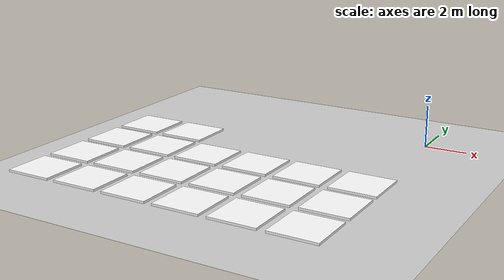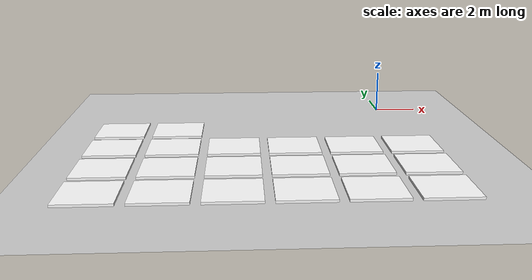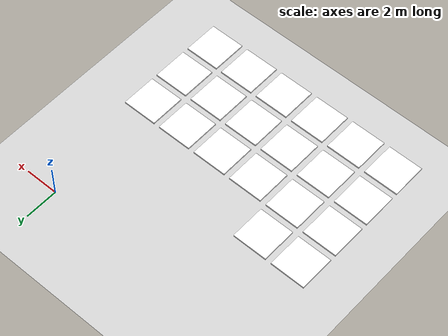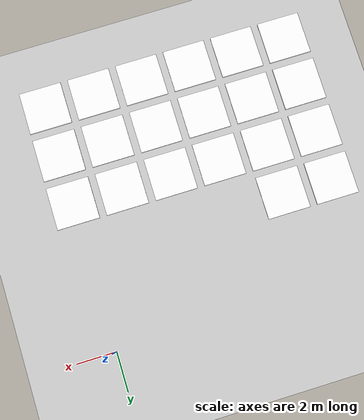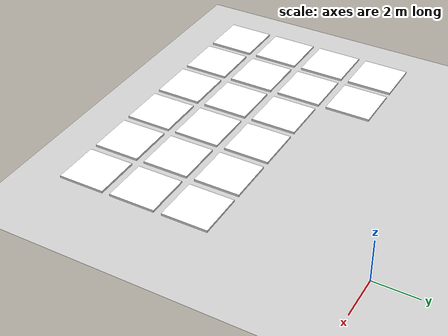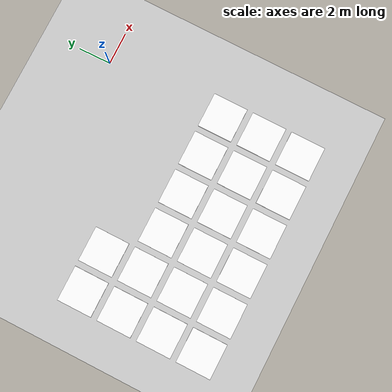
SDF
<sdf version="1.7">
 <world name="default">
  <model name="ground_plane">
   <static>1</static>
   <link name="link">
    <collision name="collision">
     <geometry><plane><normal>0 0 1</normal><size>100 100</size></plane></geometry>
     <surface>
      <contact><collide_bitmask>65535</collide_bitmask></contact>
      <friction><ode><mu>100</mu><mu2>50</mu2></ode></friction>
     </surface>
    </collision>
    <visual name="visual">
     <cast_shadows>0</cast_shadows>
     <geometry><plane><normal>0 0 1</normal><size>100 100</size></plane></geometry>
     <material>
      <script><uri>file://media/materials/scripts/gazebo.material</uri><name>Gazebo/Grey</name></script>
     </material>
    </visual>
   </link>
  </model>
  <model name="top_view_fuel_cluster_1_0">
   <link name="link">
    <inertial>
     <mass>0.489843</mass>
     <inertia>
      <ixx>0.0410659</ixx>
      <ixy>0</ixy>
      <ixz>0</ixz>
      <iyy>0.0410658</iyy>
      <iyz>0</iyz>
      <izz>0.0816405</izz>
     </inertia>
    </inertial>
    <visual name="visual">
     <geometry><box><size>2.14 2.14 0.099999</size></box></geometry>
     <material>
      <script>
       <uri>model://top_view_fuel_cluster/materials/scripts</uri>
       <uri>model://top_view_fuel_cluster/materials/textures</uri>
       <name>snf/Diffuse</name>
      </script>
      <shader type="pixel"><normal_map>__default__</normal_map></shader>
      <ambient>0.3 0.3 0.3 1</ambient>
      <diffuse>1 1 1 1</diffuse>
      <specular>0.01 0.01 0.01 1</specular>
      <emissive>0 0 0 1</emissive>
     </material>
    </visual>
    <collision name="collision">
     <geometry><box><size>2.14 2.14 0.100001</size></box></geometry>
     <surface>
      <friction>
       <ode><mu>1</mu><mu2>1</mu2><fdir1>0 0 0</fdir1><slip1>0</slip1><slip2>0</slip2></ode>
       <torsional>
        <coefficient>1</coefficient>
        <patch_radius>0</patch_radius>
        <surface_radius>0</surface_radius>
        <use_patch_radius>1</use_patch_radius>
        <ode><slip>0</slip></ode>
       </torsional>
      </friction>
      <bounce><restitution_coefficient>0</restitution_coefficient><threshold>1e+06</threshold></bounce>
      <contact>
       <collide_without_contact>0</collide_without_contact>
       <collide_without_contact_bitmask>1</collide_without_contact_bitmask>
       <collide_bitmask>1</collide_bitmask>
       <ode>
        <soft_cfm>0</soft_cfm>
        <soft_erp>0.2</soft_erp>
        <kp>1e+13</kp>
        <kd>1</kd>
        <max_vel>0.01</max_vel>
        <min_depth>0</min_depth>
       </ode>
       <bullet>
        <split_impulse>1</split_impulse>
        <split_impulse_penetration_threshold>-0.01</split_impulse_penetration_threshold>
        <soft_cfm>0</soft_cfm>
        <soft_erp>0.2</soft_erp>
        <kp>1e+13</kp>
        <kd>1</kd>
       </bullet>
      </contact>
     </surface>
    </collision>
   </link>
   <static>0</static>
   <pose>0 -12.5 0.5 0 0 0</pose>
  </model>
  <model name="top_view_fuel_cluster_1_1">
   <link name="link">
    <inertial>
     <mass>0.489843</mass>
     <inertia>
      <ixx>0.0410659</ixx>
      <ixy>0</ixy>
      <ixz>0</ixz>
      <iyy>0.0410658</iyy>
      <iyz>0</iyz>
      <izz>0.0816405</izz>
     </inertia>
    </inertial>
    <visual name="visual">
     <geometry><box><size>2.14 2.14 0.099999</size></box></geometry>
     <material>
      <script>
       <uri>model://top_view_fuel_cluster/materials/scripts</uri>
       <uri>model://top_view_fuel_cluster/materials/textures</uri>
       <name>snf/Diffuse</name>
      </script>
      <shader type="pixel"><normal_map>__default__</normal_map></shader>
      <ambient>0.3 0.3 0.3 1</ambient>
      <diffuse>1 1 1 1</diffuse>
      <specular>0.01 0.01 0.01 1</specular>
      <emissive>0 0 0 1</emissive>
     </material>
    </visual>
    <collision name="collision">
     <geometry><box><size>2.14 2.14 0.100001</size></box></geometry>
     <surface>
      <friction>
       <ode><mu>1</mu><mu2>1</mu2><fdir1>0 0 0</fdir1><slip1>0</slip1><slip2>0</slip2></ode>
       <torsional>
        <coefficient>1</coefficient>
        <patch_radius>0</patch_radius>
        <surface_radius>0</surface_radius>
        <use_patch_radius>1</use_patch_radius>
        <ode><slip>0</slip></ode>
       </torsional>
      </friction>
      <bounce><restitution_coefficient>0</restitution_coefficient><threshold>1e+06</threshold></bounce>
      <contact>
       <collide_without_contact>0</collide_without_contact>
       <collide_without_contact_bitmask>1</collide_without_contact_bitmask>
       <collide_bitmask>1</collide_bitmask>
       <ode>
        <soft_cfm>0</soft_cfm>
        <soft_erp>0.2</soft_erp>
        <kp>1e+13</kp>
        <kd>1</kd>
        <max_vel>0.01</max_vel>
        <min_depth>0</min_depth>
       </ode>
       <bullet>
        <split_impulse>1</split_impulse>
        <split_impulse_penetration_threshold>-0.01</split_impulse_penetration_threshold>
        <soft_cfm>0</soft_cfm>
        <soft_erp>0.2</soft_erp>
        <kp>1e+13</kp>
        <kd>1</kd>
       </bullet>
      </contact>
     </surface>
    </collision>
   </link>
   <static>0</static>
   <pose>-12.5 -12.5 0.5 0 -0 0</pose>
  </model>
  <model name="top_view_fuel_cluster_1_2">
   <link name="link">
    <inertial>
     <mass>0.489843</mass>
     <inertia>
      <ixx>0.0410659</ixx>
      <ixy>0</ixy>
      <ixz>0</ixz>
      <iyy>0.0410658</iyy>
      <iyz>0</iyz>
      <izz>0.0816405</izz>
     </inertia>
    </inertial>
    <visual name="visual">
     <geometry><box><size>2.14 2.14 0.099999</size></box></geometry>
     <material>
      <script>
       <uri>model://top_view_fuel_cluster/materials/scripts</uri>
       <uri>model://top_view_fuel_cluster/materials/textures</uri>
       <name>snf/Diffuse</name>
      </script>
      <shader type="pixel"><normal_map>__default__</normal_map></shader>
      <ambient>0.3 0.3 0.3 1</ambient>
      <diffuse>1 1 1 1</diffuse>
      <specular>0.01 0.01 0.01 1</specular>
      <emissive>0 0 0 1</emissive>
     </material>
    </visual>
    <collision name="collision">
     <geometry><box><size>2.14 2.14 0.100001</size></box></geometry>
     <surface>
      <friction>
       <ode><mu>1</mu><mu2>1</mu2><fdir1>0 0 0</fdir1><slip1>0</slip1><slip2>0</slip2></ode>
       <torsional>
        <coefficient>1</coefficient>
        <patch_radius>0</patch_radius>
        <surface_radius>0</surface_radius>
        <use_patch_radius>1</use_patch_radius>
        <ode><slip>0</slip></ode>
       </torsional>
      </friction>
      <bounce><restitution_coefficient>0</restitution_coefficient><threshold>1e+06</threshold></bounce>
      <contact>
       <collide_without_contact>0</collide_without_contact>
       <collide_without_contact_bitmask>1</collide_without_contact_bitmask>
       <collide_bitmask>1</collide_bitmask>
       <ode>
        <soft_cfm>0</soft_cfm>
        <soft_erp>0.2</soft_erp>
        <kp>1e+13</kp>
        <kd>1</kd>
        <max_vel>0.01</max_vel>
        <min_depth>0</min_depth>
       </ode>
       <bullet>
        <split_impulse>1</split_impulse>
        <split_impulse_penetration_threshold>-0.01</split_impulse_penetration_threshold>
        <soft_cfm>0</soft_cfm>
        <soft_erp>0.2</soft_erp>
        <kp>1e+13</kp>
        <kd>1</kd>
       </bullet>
      </contact>
     </surface>
    </collision>
   </link>
   <static>0</static>
   <pose>-10 -12.5 0.5 0 -0 0</pose>
  </model>
  <model name="top_view_fuel_cluster_1_3">
   <link name="link">
    <inertial>
     <mass>0.489843</mass>
     <inertia>
      <ixx>0.0410659</ixx>
      <ixy>0</ixy>
      <ixz>0</ixz>
      <iyy>0.0410658</iyy>
      <iyz>0</iyz>
      <izz>0.0816405</izz>
     </inertia>
    </inertial>
    <visual name="visual">
     <geometry><box><size>2.14 2.14 0.099999</size></box></geometry>
     <material>
      <script>
       <uri>model://top_view_fuel_cluster/materials/scripts</uri>
       <uri>model://top_view_fuel_cluster/materials/textures</uri>
       <name>snf/Diffuse</name>
      </script>
      <shader type="pixel"><normal_map>__default__</normal_map></shader>
      <ambient>0.3 0.3 0.3 1</ambient>
      <diffuse>1 1 1 1</diffuse>
      <specular>0.01 0.01 0.01 1</specular>
      <emissive>0 0 0 1</emissive>
     </material>
    </visual>
    <collision name="collision">
     <geometry><box><size>2.14 2.14 0.100001</size></box></geometry>
     <surface>
      <friction>
       <ode><mu>1</mu><mu2>1</mu2><fdir1>0 0 0</fdir1><slip1>0</slip1><slip2>0</slip2></ode>
       <torsional>
        <coefficient>1</coefficient>
        <patch_radius>0</patch_radius>
        <surface_radius>0</surface_radius>
        <use_patch_radius>1</use_patch_radius>
        <ode><slip>0</slip></ode>
       </torsional>
      </friction>
      <bounce><restitution_coefficient>0</restitution_coefficient><threshold>1e+06</threshold></bounce>
      <contact>
       <collide_without_contact>0</collide_without_contact>
       <collide_without_contact_bitmask>1</collide_without_contact_bitmask>
       <collide_bitmask>1</collide_bitmask>
       <ode>
        <soft_cfm>0</soft_cfm>
        <soft_erp>0.2</soft_erp>
        <kp>1e+13</kp>
        <kd>1</kd>
        <max_vel>0.01</max_vel>
        <min_depth>0</min_depth>
       </ode>
       <bullet>
        <split_impulse>1</split_impulse>
        <split_impulse_penetration_threshold>-0.01</split_impulse_penetration_threshold>
        <soft_cfm>0</soft_cfm>
        <soft_erp>0.2</soft_erp>
        <kp>1e+13</kp>
        <kd>1</kd>
       </bullet>
      </contact>
     </surface>
    </collision>
   </link>
   <static>0</static>
   <pose>-7.5 -12.5 0.5 0 -0 0</pose>
  </model>
  <model name="top_view_fuel_cluster_1_4">
   <link name="link">
    <inertial>
     <mass>0.489843</mass>
     <inertia>
      <ixx>0.0410659</ixx>
      <ixy>0</ixy>
      <ixz>0</ixz>
      <iyy>0.0410658</iyy>
      <iyz>0</iyz>
      <izz>0.0816405</izz>
     </inertia>
    </inertial>
    <visual name="visual">
     <geometry><box><size>2.14 2.14 0.099999</size></box></geometry>
     <material>
      <script>
       <uri>model://top_view_fuel_cluster/materials/scripts</uri>
       <uri>model://top_view_fuel_cluster/materials/textures</uri>
       <name>snf/Diffuse</name>
      </script>
      <shader type="pixel"><normal_map>__default__</normal_map></shader>
      <ambient>0.3 0.3 0.3 1</ambient>
      <diffuse>1 1 1 1</diffuse>
      <specular>0.01 0.01 0.01 1</specular>
      <emissive>0 0 0 1</emissive>
     </material>
    </visual>
    <collision name="collision">
     <geometry><box><size>2.14 2.14 0.100001</size></box></geometry>
     <surface>
      <friction>
       <ode><mu>1</mu><mu2>1</mu2><fdir1>0 0 0</fdir1><slip1>0</slip1><slip2>0</slip2></ode>
       <torsional>
        <coefficient>1</coefficient>
        <patch_radius>0</patch_radius>
        <surface_radius>0</surface_radius>
        <use_patch_radius>1</use_patch_radius>
        <ode><slip>0</slip></ode>
       </torsional>
      </friction>
      <bounce><restitution_coefficient>0</restitution_coefficient><threshold>1e+06</threshold></bounce>
      <contact>
       <collide_without_contact>0</collide_without_contact>
       <collide_without_contact_bitmask>1</collide_without_contact_bitmask>
       <collide_bitmask>1</collide_bitmask>
       <ode>
        <soft_cfm>0</soft_cfm>
        <soft_erp>0.2</soft_erp>
        <kp>1e+13</kp>
        <kd>1</kd>
        <max_vel>0.01</max_vel>
        <min_depth>0</min_depth>
       </ode>
       <bullet>
        <split_impulse>1</split_impulse>
        <split_impulse_penetration_threshold>-0.01</split_impulse_penetration_threshold>
        <soft_cfm>0</soft_cfm>
        <soft_erp>0.2</soft_erp>
        <kp>1e+13</kp>
        <kd>1</kd>
       </bullet>
      </contact>
     </surface>
    </collision>
   </link>
   <static>0</static>
   <pose>-5 -12.5 0.5 0 -0 0</pose>
  </model>
  <model name="top_view_fuel_cluster_1_5">
   <link name="link">
    <inertial>
     <mass>0.489843</mass>
     <inertia>
      <ixx>0.0410659</ixx>
      <ixy>0</ixy>
      <ixz>0</ixz>
      <iyy>0.0410658</iyy>
      <iyz>0</iyz>
      <izz>0.0816405</izz>
     </inertia>
    </inertial>
    <visual name="visual">
     <geometry><box><size>2.14 2.14 0.099999</size></box></geometry>
     <material>
      <script>
       <uri>model://top_view_fuel_cluster/materials/scripts</uri>
       <uri>model://top_view_fuel_cluster/materials/textures</uri>
       <name>snf/Diffuse</name>
      </script>
      <shader type="pixel"><normal_map>__default__</normal_map></shader>
      <ambient>0.3 0.3 0.3 1</ambient>
      <diffuse>1 1 1 1</diffuse>
      <specular>0.01 0.01 0.01 1</specular>
      <emissive>0 0 0 1</emissive>
     </material>
    </visual>
    <collision name="collision">
     <geometry><box><size>2.14 2.14 0.100001</size></box></geometry>
     <surface>
      <friction>
       <ode><mu>1</mu><mu2>1</mu2><fdir1>0 0 0</fdir1><slip1>0</slip1><slip2>0</slip2></ode>
       <torsional>
        <coefficient>1</coefficient>
        <patch_radius>0</patch_radius>
        <surface_radius>0</surface_radius>
        <use_patch_radius>1</use_patch_radius>
        <ode><slip>0</slip></ode>
       </torsional>
      </friction>
      <bounce><restitution_coefficient>0</restitution_coefficient><threshold>1e+06</threshold></bounce>
      <contact>
       <collide_without_contact>0</collide_without_contact>
       <collide_without_contact_bitmask>1</collide_without_contact_bitmask>
       <collide_bitmask>1</collide_bitmask>
       <ode>
        <soft_cfm>0</soft_cfm>
        <soft_erp>0.2</soft_erp>
        <kp>1e+13</kp>
        <kd>1</kd>
        <max_vel>0.01</max_vel>
        <min_depth>0</min_depth>
       </ode>
       <bullet>
        <split_impulse>1</split_impulse>
        <split_impulse_penetration_threshold>-0.01</split_impulse_penetration_threshold>
        <soft_cfm>0</soft_cfm>
        <soft_erp>0.2</soft_erp>
        <kp>1e+13</kp>
        <kd>1</kd>
       </bullet>
      </contact>
     </surface>
    </collision>
   </link>
   <static>0</static>
   <pose>-2.5 -12.5 0.5 0 -0 0</pose>
  </model>
  <model name="top_view_fuel_cluster_2_0">
   <link name="link">
    <inertial>
     <mass>0.489843</mass>
     <inertia>
      <ixx>0.0410659</ixx>
      <ixy>0</ixy>
      <ixz>0</ixz>
      <iyy>0.0410658</iyy>
      <iyz>0</iyz>
      <izz>0.0816405</izz>
     </inertia>
    </inertial>
    <visual name="visual">
     <geometry><box><size>2.14 2.14 0.099999</size></box></geometry>
     <material>
      <script>
       <uri>model://top_view_fuel_cluster/materials/scripts</uri>
       <uri>model://top_view_fuel_cluster/materials/textures</uri>
       <name>snf/Diffuse</name>
      </script>
      <shader type="pixel"><normal_map>__default__</normal_map></shader>
      <ambient>0.3 0.3 0.3 1</ambient>
      <diffuse>1 1 1 1</diffuse>
      <specular>0.01 0.01 0.01 1</specular>
      <emissive>0 0 0 1</emissive>
     </material>
    </visual>
    <collision name="collision">
     <geometry><box><size>2.14 2.14 0.100001</size></box></geometry>
     <surface>
      <friction>
       <ode><mu>1</mu><mu2>1</mu2><fdir1>0 0 0</fdir1><slip1>0</slip1><slip2>0</slip2></ode>
       <torsional>
        <coefficient>1</coefficient>
        <patch_radius>0</patch_radius>
        <surface_radius>0</surface_radius>
        <use_patch_radius>1</use_patch_radius>
        <ode><slip>0</slip></ode>
       </torsional>
      </friction>
      <bounce><restitution_coefficient>0</restitution_coefficient><threshold>1e+06</threshold></bounce>
      <contact>
       <collide_without_contact>0</collide_without_contact>
       <collide_without_contact_bitmask>1</collide_without_contact_bitmask>
       <collide_bitmask>1</collide_bitmask>
       <ode>
        <soft_cfm>0</soft_cfm>
        <soft_erp>0.2</soft_erp>
        <kp>1e+13</kp>
        <kd>1</kd>
        <max_vel>0.01</max_vel>
        <min_depth>0</min_depth>
       </ode>
       <bullet>
        <split_impulse>1</split_impulse>
        <split_impulse_penetration_threshold>-0.01</split_impulse_penetration_threshold>
        <soft_cfm>0</soft_cfm>
        <soft_erp>0.2</soft_erp>
        <kp>1e+13</kp>
        <kd>1</kd>
       </bullet>
      </contact>
     </surface>
    </collision>
   </link>
   <static>0</static>
   <pose>0 -10 0.5 0 0 0</pose>
  </model>
  <model name="top_view_fuel_cluster_2_1">
   <link name="link">
    <inertial>
     <mass>0.489843</mass>
     <inertia>
      <ixx>0.0410659</ixx>
      <ixy>0</ixy>
      <ixz>0</ixz>
      <iyy>0.0410658</iyy>
      <iyz>0</iyz>
      <izz>0.0816405</izz>
     </inertia>
    </inertial>
    <visual name="visual">
     <geometry><box><size>2.14 2.14 0.099999</size></box></geometry>
     <material>
      <script>
       <uri>model://top_view_fuel_cluster/materials/scripts</uri>
       <uri>model://top_view_fuel_cluster/materials/textures</uri>
       <name>snf/Diffuse</name>
      </script>
      <shader type="pixel"><normal_map>__default__</normal_map></shader>
      <ambient>0.3 0.3 0.3 1</ambient>
      <diffuse>1 1 1 1</diffuse>
      <specular>0.01 0.01 0.01 1</specular>
      <emissive>0 0 0 1</emissive>
     </material>
    </visual>
    <collision name="collision">
     <geometry><box><size>2.14 2.14 0.100001</size></box></geometry>
     <surface>
      <friction>
       <ode><mu>1</mu><mu2>1</mu2><fdir1>0 0 0</fdir1><slip1>0</slip1><slip2>0</slip2></ode>
       <torsional>
        <coefficient>1</coefficient>
        <patch_radius>0</patch_radius>
        <surface_radius>0</surface_radius>
        <use_patch_radius>1</use_patch_radius>
        <ode><slip>0</slip></ode>
       </torsional>
      </friction>
      <bounce><restitution_coefficient>0</restitution_coefficient><threshold>1e+06</threshold></bounce>
      <contact>
       <collide_without_contact>0</collide_without_contact>
       <collide_without_contact_bitmask>1</collide_without_contact_bitmask>
       <collide_bitmask>1</collide_bitmask>
       <ode>
        <soft_cfm>0</soft_cfm>
        <soft_erp>0.2</soft_erp>
        <kp>1e+13</kp>
        <kd>1</kd>
        <max_vel>0.01</max_vel>
        <min_depth>0</min_depth>
       </ode>
       <bullet>
        <split_impulse>1</split_impulse>
        <split_impulse_penetration_threshold>-0.01</split_impulse_penetration_threshold>
        <soft_cfm>0</soft_cfm>
        <soft_erp>0.2</soft_erp>
        <kp>1e+13</kp>
        <kd>1</kd>
       </bullet>
      </contact>
     </surface>
    </collision>
   </link>
   <static>0</static>
   <pose>-12.5 -10 0.5 0 -0 0</pose>
  </model>
  <model name="top_view_fuel_cluster_2_2">
   <link name="link">
    <inertial>
     <mass>0.489843</mass>
     <inertia>
      <ixx>0.0410659</ixx>
      <ixy>0</ixy>
      <ixz>0</ixz>
      <iyy>0.0410658</iyy>
      <iyz>0</iyz>
      <izz>0.0816405</izz>
     </inertia>
    </inertial>
    <visual name="visual">
     <geometry><box><size>2.14 2.14 0.099999</size></box></geometry>
     <material>
      <script>
       <uri>model://top_view_fuel_cluster/materials/scripts</uri>
       <uri>model://top_view_fuel_cluster/materials/textures</uri>
       <name>snf/Diffuse</name>
      </script>
      <shader type="pixel"><normal_map>__default__</normal_map></shader>
      <ambient>0.3 0.3 0.3 1</ambient>
      <diffuse>1 1 1 1</diffuse>
      <specular>0.01 0.01 0.01 1</specular>
      <emissive>0 0 0 1</emissive>
     </material>
    </visual>
    <collision name="collision">
     <geometry><box><size>2.14 2.14 0.100001</size></box></geometry>
     <surface>
      <friction>
       <ode><mu>1</mu><mu2>1</mu2><fdir1>0 0 0</fdir1><slip1>0</slip1><slip2>0</slip2></ode>
       <torsional>
        <coefficient>1</coefficient>
        <patch_radius>0</patch_radius>
        <surface_radius>0</surface_radius>
        <use_patch_radius>1</use_patch_radius>
        <ode><slip>0</slip></ode>
       </torsional>
      </friction>
      <bounce><restitution_coefficient>0</restitution_coefficient><threshold>1e+06</threshold></bounce>
      <contact>
       <collide_without_contact>0</collide_without_contact>
       <collide_without_contact_bitmask>1</collide_without_contact_bitmask>
       <collide_bitmask>1</collide_bitmask>
       <ode>
        <soft_cfm>0</soft_cfm>
        <soft_erp>0.2</soft_erp>
        <kp>1e+13</kp>
        <kd>1</kd>
        <max_vel>0.01</max_vel>
        <min_depth>0</min_depth>
       </ode>
       <bullet>
        <split_impulse>1</split_impulse>
        <split_impulse_penetration_threshold>-0.01</split_impulse_penetration_threshold>
        <soft_cfm>0</soft_cfm>
        <soft_erp>0.2</soft_erp>
        <kp>1e+13</kp>
        <kd>1</kd>
       </bullet>
      </contact>
     </surface>
    </collision>
   </link>
   <static>0</static>
   <pose>-10 -10 0.5 0 -0 0</pose>
  </model>
  <model name="top_view_fuel_cluster_2_3">
   <link name="link">
    <inertial>
     <mass>0.489843</mass>
     <inertia>
      <ixx>0.0410659</ixx>
      <ixy>0</ixy>
      <ixz>0</ixz>
      <iyy>0.0410658</iyy>
      <iyz>0</iyz>
      <izz>0.0816405</izz>
     </inertia>
    </inertial>
    <visual name="visual">
     <geometry><box><size>2.14 2.14 0.099999</size></box></geometry>
     <material>
      <script>
       <uri>model://top_view_fuel_cluster/materials/scripts</uri>
       <uri>model://top_view_fuel_cluster/materials/textures</uri>
       <name>snf/Diffuse</name>
      </script>
      <shader type="pixel"><normal_map>__default__</normal_map></shader>
      <ambient>0.3 0.3 0.3 1</ambient>
      <diffuse>1 1 1 1</diffuse>
      <specular>0.01 0.01 0.01 1</specular>
      <emissive>0 0 0 1</emissive>
     </material>
    </visual>
    <collision name="collision">
     <geometry><box><size>2.14 2.14 0.100001</size></box></geometry>
     <surface>
      <friction>
       <ode><mu>1</mu><mu2>1</mu2><fdir1>0 0 0</fdir1><slip1>0</slip1><slip2>0</slip2></ode>
       <torsional>
        <coefficient>1</coefficient>
        <patch_radius>0</patch_radius>
        <surface_radius>0</surface_radius>
        <use_patch_radius>1</use_patch_radius>
        <ode><slip>0</slip></ode>
       </torsional>
      </friction>
      <bounce><restitution_coefficient>0</restitution_coefficient><threshold>1e+06</threshold></bounce>
      <contact>
       <collide_without_contact>0</collide_without_contact>
       <collide_without_contact_bitmask>1</collide_without_contact_bitmask>
       <collide_bitmask>1</collide_bitmask>
       <ode>
        <soft_cfm>0</soft_cfm>
        <soft_erp>0.2</soft_erp>
        <kp>1e+13</kp>
        <kd>1</kd>
        <max_vel>0.01</max_vel>
        <min_depth>0</min_depth>
       </ode>
       <bullet>
        <split_impulse>1</split_impulse>
        <split_impulse_penetration_threshold>-0.01</split_impulse_penetration_threshold>
        <soft_cfm>0</soft_cfm>
        <soft_erp>0.2</soft_erp>
        <kp>1e+13</kp>
        <kd>1</kd>
       </bullet>
      </contact>
     </surface>
    </collision>
   </link>
   <static>0</static>
   <pose>-7.5 -10 0.5 0 -0 0</pose>
  </model>
  <model name="top_view_fuel_cluster_2_4">
   <link name="link">
    <inertial>
     <mass>0.489843</mass>
     <inertia>
      <ixx>0.0410659</ixx>
      <ixy>0</ixy>
      <ixz>0</ixz>
      <iyy>0.0410658</iyy>
      <iyz>0</iyz>
      <izz>0.0816405</izz>
     </inertia>
    </inertial>
    <visual name="visual">
     <geometry><box><size>2.14 2.14 0.099999</size></box></geometry>
     <material>
      <script>
       <uri>model://top_view_fuel_cluster/materials/scripts</uri>
       <uri>model://top_view_fuel_cluster/materials/textures</uri>
       <name>snf/Diffuse</name>
      </script>
      <shader type="pixel"><normal_map>__default__</normal_map></shader>
      <ambient>0.3 0.3 0.3 1</ambient>
      <diffuse>1 1 1 1</diffuse>
      <specular>0.01 0.01 0.01 1</specular>
      <emissive>0 0 0 1</emissive>
     </material>
    </visual>
    <collision name="collision">
     <geometry><box><size>2.14 2.14 0.100001</size></box></geometry>
     <surface>
      <friction>
       <ode><mu>1</mu><mu2>1</mu2><fdir1>0 0 0</fdir1><slip1>0</slip1><slip2>0</slip2></ode>
       <torsional>
        <coefficient>1</coefficient>
        <patch_radius>0</patch_radius>
        <surface_radius>0</surface_radius>
        <use_patch_radius>1</use_patch_radius>
        <ode><slip>0</slip></ode>
       </torsional>
      </friction>
      <bounce><restitution_coefficient>0</restitution_coefficient><threshold>1e+06</threshold></bounce>
      <contact>
       <collide_without_contact>0</collide_without_contact>
       <collide_without_contact_bitmask>1</collide_without_contact_bitmask>
       <collide_bitmask>1</collide_bitmask>
       <ode>
        <soft_cfm>0</soft_cfm>
        <soft_erp>0.2</soft_erp>
        <kp>1e+13</kp>
        <kd>1</kd>
        <max_vel>0.01</max_vel>
        <min_depth>0</min_depth>
       </ode>
       <bullet>
        <split_impulse>1</split_impulse>
        <split_impulse_penetration_threshold>-0.01</split_impulse_penetration_threshold>
        <soft_cfm>0</soft_cfm>
        <soft_erp>0.2</soft_erp>
        <kp>1e+13</kp>
        <kd>1</kd>
       </bullet>
      </contact>
     </surface>
    </collision>
   </link>
   <static>0</static>
   <pose>-5 -10 0.5 0 -0 0</pose>
  </model>
  <model name="top_view_fuel_cluster_2_5">
   <link name="link">
    <inertial>
     <mass>0.489843</mass>
     <inertia>
      <ixx>0.0410659</ixx>
      <ixy>0</ixy>
      <ixz>0</ixz>
      <iyy>0.0410658</iyy>
      <iyz>0</iyz>
      <izz>0.0816405</izz>
     </inertia>
    </inertial>
    <visual name="visual">
     <geometry><box><size>2.14 2.14 0.099999</size></box></geometry>
     <material>
      <script>
       <uri>model://top_view_fuel_cluster/materials/scripts</uri>
       <uri>model://top_view_fuel_cluster/materials/textures</uri>
       <name>snf/Diffuse</name>
      </script>
      <shader type="pixel"><normal_map>__default__</normal_map></shader>
      <ambient>0.3 0.3 0.3 1</ambient>
      <diffuse>1 1 1 1</diffuse>
      <specular>0.01 0.01 0.01 1</specular>
      <emissive>0 0 0 1</emissive>
     </material>
    </visual>
    <collision name="collision">
     <geometry><box><size>2.14 2.14 0.100001</size></box></geometry>
     <surface>
      <friction>
       <ode><mu>1</mu><mu2>1</mu2><fdir1>0 0 0</fdir1><slip1>0</slip1><slip2>0</slip2></ode>
       <torsional>
        <coefficient>1</coefficient>
        <patch_radius>0</patch_radius>
        <surface_radius>0</surface_radius>
        <use_patch_radius>1</use_patch_radius>
        <ode><slip>0</slip></ode>
       </torsional>
      </friction>
      <bounce><restitution_coefficient>0</restitution_coefficient><threshold>1e+06</threshold></bounce>
      <contact>
       <collide_without_contact>0</collide_without_contact>
       <collide_without_contact_bitmask>1</collide_without_contact_bitmask>
       <collide_bitmask>1</collide_bitmask>
       <ode>
        <soft_cfm>0</soft_cfm>
        <soft_erp>0.2</soft_erp>
        <kp>1e+13</kp>
        <kd>1</kd>
        <max_vel>0.01</max_vel>
        <min_depth>0</min_depth>
       </ode>
       <bullet>
        <split_impulse>1</split_impulse>
        <split_impulse_penetration_threshold>-0.01</split_impulse_penetration_threshold>
        <soft_cfm>0</soft_cfm>
        <soft_erp>0.2</soft_erp>
        <kp>1e+13</kp>
        <kd>1</kd>
       </bullet>
      </contact>
     </surface>
    </collision>
   </link>
   <static>0</static>
   <pose>-2.5 -10 0.5 0 -0 0</pose>
  </model>
  <model name="top_view_fuel_cluster_3_0">
   <link name="link">
    <inertial>
     <mass>0.489843</mass>
     <inertia>
      <ixx>0.0410659</ixx>
      <ixy>0</ixy>
      <ixz>0</ixz>
      <iyy>0.0410658</iyy>
      <iyz>0</iyz>
      <izz>0.0816405</izz>
     </inertia>
    </inertial>
    <visual name="visual">
     <geometry><box><size>2.14 2.14 0.099999</size></box></geometry>
     <material>
      <script>
       <uri>model://top_view_fuel_cluster/materials/scripts</uri>
       <uri>model://top_view_fuel_cluster/materials/textures</uri>
       <name>snf/Diffuse</name>
      </script>
      <shader type="pixel"><normal_map>__default__</normal_map></shader>
      <ambient>0.3 0.3 0.3 1</ambient>
      <diffuse>1 1 1 1</diffuse>
      <specular>0.01 0.01 0.01 1</specular>
      <emissive>0 0 0 1</emissive>
     </material>
    </visual>
    <collision name="collision">
     <geometry><box><size>2.14 2.14 0.100001</size></box></geometry>
     <surface>
      <friction>
       <ode><mu>1</mu><mu2>1</mu2><fdir1>0 0 0</fdir1><slip1>0</slip1><slip2>0</slip2></ode>
       <torsional>
        <coefficient>1</coefficient>
        <patch_radius>0</patch_radius>
        <surface_radius>0</surface_radius>
        <use_patch_radius>1</use_patch_radius>
        <ode><slip>0</slip></ode>
       </torsional>
      </friction>
      <bounce><restitution_coefficient>0</restitution_coefficient><threshold>1e+06</threshold></bounce>
      <contact>
       <collide_without_contact>0</collide_without_contact>
       <collide_without_contact_bitmask>1</collide_without_contact_bitmask>
       <collide_bitmask>1</collide_bitmask>
       <ode>
        <soft_cfm>0</soft_cfm>
        <soft_erp>0.2</soft_erp>
        <kp>1e+13</kp>
        <kd>1</kd>
        <max_vel>0.01</max_vel>
        <min_depth>0</min_depth>
       </ode>
       <bullet>
        <split_impulse>1</split_impulse>
        <split_impulse_penetration_threshold>-0.01</split_impulse_penetration_threshold>
        <soft_cfm>0</soft_cfm>
        <soft_erp>0.2</soft_erp>
        <kp>1e+13</kp>
        <kd>1</kd>
       </bullet>
      </contact>
     </surface>
    </collision>
   </link>
   <static>0</static>
   <pose>0 -7.5 0.5 0 0 0</pose>
  </model>
  <model name="top_view_fuel_cluster_3_1">
   <link name="link">
    <inertial>
     <mass>0.489843</mass>
     <inertia>
      <ixx>0.0410659</ixx>
      <ixy>0</ixy>
      <ixz>0</ixz>
      <iyy>0.0410658</iyy>
      <iyz>0</iyz>
      <izz>0.0816405</izz>
     </inertia>
    </inertial>
    <visual name="visual">
     <geometry><box><size>2.14 2.14 0.099999</size></box></geometry>
     <material>
      <script>
       <uri>model://top_view_fuel_cluster/materials/scripts</uri>
       <uri>model://top_view_fuel_cluster/materials/textures</uri>
       <name>snf/Diffuse</name>
      </script>
      <shader type="pixel"><normal_map>__default__</normal_map></shader>
      <ambient>0.3 0.3 0.3 1</ambient>
      <diffuse>1 1 1 1</diffuse>
      <specular>0.01 0.01 0.01 1</specular>
      <emissive>0 0 0 1</emissive>
     </material>
    </visual>
    <collision name="collision">
     <geometry><box><size>2.14 2.14 0.100001</size></box></geometry>
     <surface>
      <friction>
       <ode><mu>1</mu><mu2>1</mu2><fdir1>0 0 0</fdir1><slip1>0</slip1><slip2>0</slip2></ode>
       <torsional>
        <coefficient>1</coefficient>
        <patch_radius>0</patch_radius>
        <surface_radius>0</surface_radius>
        <use_patch_radius>1</use_patch_radius>
        <ode><slip>0</slip></ode>
       </torsional>
      </friction>
      <bounce><restitution_coefficient>0</restitution_coefficient><threshold>1e+06</threshold></bounce>
      <contact>
       <collide_without_contact>0</collide_without_contact>
       <collide_without_contact_bitmask>1</collide_without_contact_bitmask>
       <collide_bitmask>1</collide_bitmask>
       <ode>
        <soft_cfm>0</soft_cfm>
        <soft_erp>0.2</soft_erp>
        <kp>1e+13</kp>
        <kd>1</kd>
        <max_vel>0.01</max_vel>
        <min_depth>0</min_depth>
       </ode>
       <bullet>
        <split_impulse>1</split_impulse>
        <split_impulse_penetration_threshold>-0.01</split_impulse_penetration_threshold>
        <soft_cfm>0</soft_cfm>
        <soft_erp>0.2</soft_erp>
        <kp>1e+13</kp>
        <kd>1</kd>
       </bullet>
      </contact>
     </surface>
    </collision>
   </link>
   <static>0</static>
   <pose>-12.5 -7.5 0.5 0 -0 0</pose>
  </model>
  <model name="top_view_fuel_cluster_3_2">
   <link name="link">
    <inertial>
     <mass>0.489843</mass>
     <inertia>
      <ixx>0.0410659</ixx>
      <ixy>0</ixy>
      <ixz>0</ixz>
      <iyy>0.0410658</iyy>
      <iyz>0</iyz>
      <izz>0.0816405</izz>
     </inertia>
    </inertial>
    <visual name="visual">
     <geometry><box><size>2.14 2.14 0.099999</size></box></geometry>
     <material>
      <script>
       <uri>model://top_view_fuel_cluster/materials/scripts</uri>
       <uri>model://top_view_fuel_cluster/materials/textures</uri>
       <name>snf/Diffuse</name>
      </script>
      <shader type="pixel"><normal_map>__default__</normal_map></shader>
      <ambient>0.3 0.3 0.3 1</ambient>
      <diffuse>1 1 1 1</diffuse>
      <specular>0.01 0.01 0.01 1</specular>
      <emissive>0 0 0 1</emissive>
     </material>
    </visual>
    <collision name="collision">
     <geometry><box><size>2.14 2.14 0.100001</size></box></geometry>
     <surface>
      <friction>
       <ode><mu>1</mu><mu2>1</mu2><fdir1>0 0 0</fdir1><slip1>0</slip1><slip2>0</slip2></ode>
       <torsional>
        <coefficient>1</coefficient>
        <patch_radius>0</patch_radius>
        <surface_radius>0</surface_radius>
        <use_patch_radius>1</use_patch_radius>
        <ode><slip>0</slip></ode>
       </torsional>
      </friction>
      <bounce><restitution_coefficient>0</restitution_coefficient><threshold>1e+06</threshold></bounce>
      <contact>
       <collide_without_contact>0</collide_without_contact>
       <collide_without_contact_bitmask>1</collide_without_contact_bitmask>
       <collide_bitmask>1</collide_bitmask>
       <ode>
        <soft_cfm>0</soft_cfm>
        <soft_erp>0.2</soft_erp>
        <kp>1e+13</kp>
        <kd>1</kd>
        <max_vel>0.01</max_vel>
        <min_depth>0</min_depth>
       </ode>
       <bullet>
        <split_impulse>1</split_impulse>
        <split_impulse_penetration_threshold>-0.01</split_impulse_penetration_threshold>
        <soft_cfm>0</soft_cfm>
        <soft_erp>0.2</soft_erp>
        <kp>1e+13</kp>
        <kd>1</kd>
       </bullet>
      </contact>
     </surface>
    </collision>
   </link>
   <static>0</static>
   <pose>-10 -7.5 0.5 0 -0 0</pose>
  </model>
  <model name="top_view_fuel_cluster_3_3">
   <link name="link">
    <inertial>
     <mass>0.489843</mass>
     <inertia>
      <ixx>0.0410659</ixx>
      <ixy>0</ixy>
      <ixz>0</ixz>
      <iyy>0.0410658</iyy>
      <iyz>0</iyz>
      <izz>0.0816405</izz>
     </inertia>
    </inertial>
    <visual name="visual">
     <geometry><box><size>2.14 2.14 0.099999</size></box></geometry>
     <material>
      <script>
       <uri>model://top_view_fuel_cluster/materials/scripts</uri>
       <uri>model://top_view_fuel_cluster/materials/textures</uri>
       <name>snf/Diffuse</name>
      </script>
      <shader type="pixel"><normal_map>__default__</normal_map></shader>
      <ambient>0.3 0.3 0.3 1</ambient>
      <diffuse>1 1 1 1</diffuse>
      <specular>0.01 0.01 0.01 1</specular>
      <emissive>0 0 0 1</emissive>
     </material>
    </visual>
    <collision name="collision">
     <geometry><box><size>2.14 2.14 0.100001</size></box></geometry>
     <surface>
      <friction>
       <ode><mu>1</mu><mu2>1</mu2><fdir1>0 0 0</fdir1><slip1>0</slip1><slip2>0</slip2></ode>
       <torsional>
        <coefficient>1</coefficient>
        <patch_radius>0</patch_radius>
        <surface_radius>0</surface_radius>
        <use_patch_radius>1</use_patch_radius>
        <ode><slip>0</slip></ode>
       </torsional>
      </friction>
      <bounce><restitution_coefficient>0</restitution_coefficient><threshold>1e+06</threshold></bounce>
      <contact>
       <collide_without_contact>0</collide_without_contact>
       <collide_without_contact_bitmask>1</collide_without_contact_bitmask>
       <collide_bitmask>1</collide_bitmask>
       <ode>
        <soft_cfm>0</soft_cfm>
        <soft_erp>0.2</soft_erp>
        <kp>1e+13</kp>
        <kd>1</kd>
        <max_vel>0.01</max_vel>
        <min_depth>0</min_depth>
       </ode>
       <bullet>
        <split_impulse>1</split_impulse>
        <split_impulse_penetration_threshold>-0.01</split_impulse_penetration_threshold>
        <soft_cfm>0</soft_cfm>
        <soft_erp>0.2</soft_erp>
        <kp>1e+13</kp>
        <kd>1</kd>
       </bullet>
      </contact>
     </surface>
    </collision>
   </link>
   <static>0</static>
   <pose>-7.5 -7.5 0.5 0 -0 0</pose>
  </model>
  <model name="top_view_fuel_cluster_3_4">
   <link name="link">
    <inertial>
     <mass>0.489843</mass>
     <inertia>
      <ixx>0.0410659</ixx>
      <ixy>0</ixy>
      <ixz>0</ixz>
      <iyy>0.0410658</iyy>
      <iyz>0</iyz>
      <izz>0.0816405</izz>
     </inertia>
    </inertial>
    <visual name="visual">
     <geometry><box><size>2.14 2.14 0.099999</size></box></geometry>
     <material>
      <script>
       <uri>model://top_view_fuel_cluster/materials/scripts</uri>
       <uri>model://top_view_fuel_cluster/materials/textures</uri>
       <name>snf/Diffuse</name>
      </script>
      <shader type="pixel"><normal_map>__default__</normal_map></shader>
      <ambient>0.3 0.3 0.3 1</ambient>
      <diffuse>1 1 1 1</diffuse>
      <specular>0.01 0.01 0.01 1</specular>
      <emissive>0 0 0 1</emissive>
     </material>
    </visual>
    <collision name="collision">
     <geometry><box><size>2.14 2.14 0.100001</size></box></geometry>
     <surface>
      <friction>
       <ode><mu>1</mu><mu2>1</mu2><fdir1>0 0 0</fdir1><slip1>0</slip1><slip2>0</slip2></ode>
       <torsional>
        <coefficient>1</coefficient>
        <patch_radius>0</patch_radius>
        <surface_radius>0</surface_radius>
        <use_patch_radius>1</use_patch_radius>
        <ode><slip>0</slip></ode>
       </torsional>
      </friction>
      <bounce><restitution_coefficient>0</restitution_coefficient><threshold>1e+06</threshold></bounce>
      <contact>
       <collide_without_contact>0</collide_without_contact>
       <collide_without_contact_bitmask>1</collide_without_contact_bitmask>
       <collide_bitmask>1</collide_bitmask>
       <ode>
        <soft_cfm>0</soft_cfm>
        <soft_erp>0.2</soft_erp>
        <kp>1e+13</kp>
        <kd>1</kd>
        <max_vel>0.01</max_vel>
        <min_depth>0</min_depth>
       </ode>
       <bullet>
        <split_impulse>1</split_impulse>
        <split_impulse_penetration_threshold>-0.01</split_impulse_penetration_threshold>
        <soft_cfm>0</soft_cfm>
        <soft_erp>0.2</soft_erp>
        <kp>1e+13</kp>
        <kd>1</kd>
       </bullet>
      </contact>
     </surface>
    </collision>
   </link>
   <static>0</static>
   <pose>-5 -7.5 0.5 0 -0 0</pose>
  </model>
  <model name="top_view_fuel_cluster_3_5">
   <link name="link">
    <inertial>
     <mass>0.489843</mass>
     <inertia>
      <ixx>0.0410659</ixx>
      <ixy>0</ixy>
      <ixz>0</ixz>
      <iyy>0.0410658</iyy>
      <iyz>0</iyz>
      <izz>0.0816405</izz>
     </inertia>
    </inertial>
    <visual name="visual">
     <geometry><box><size>2.14 2.14 0.099999</size></box></geometry>
     <material>
      <script>
       <uri>model://top_view_fuel_cluster/materials/scripts</uri>
       <uri>model://top_view_fuel_cluster/materials/textures</uri>
       <name>snf/Diffuse</name>
      </script>
      <shader type="pixel"><normal_map>__default__</normal_map></shader>
      <ambient>0.3 0.3 0.3 1</ambient>
      <diffuse>1 1 1 1</diffuse>
      <specular>0.01 0.01 0.01 1</specular>
      <emissive>0 0 0 1</emissive>
     </material>
    </visual>
    <collision name="collision">
     <geometry><box><size>2.14 2.14 0.100001</size></box></geometry>
     <surface>
      <friction>
       <ode><mu>1</mu><mu2>1</mu2><fdir1>0 0 0</fdir1><slip1>0</slip1><slip2>0</slip2></ode>
       <torsional>
        <coefficient>1</coefficient>
        <patch_radius>0</patch_radius>
        <surface_radius>0</surface_radius>
        <use_patch_radius>1</use_patch_radius>
        <ode><slip>0</slip></ode>
       </torsional>
      </friction>
      <bounce><restitution_coefficient>0</restitution_coefficient><threshold>1e+06</threshold></bounce>
      <contact>
       <collide_without_contact>0</collide_without_contact>
       <collide_without_contact_bitmask>1</collide_without_contact_bitmask>
       <collide_bitmask>1</collide_bitmask>
       <ode>
        <soft_cfm>0</soft_cfm>
        <soft_erp>0.2</soft_erp>
        <kp>1e+13</kp>
        <kd>1</kd>
        <max_vel>0.01</max_vel>
        <min_depth>0</min_depth>
       </ode>
       <bullet>
        <split_impulse>1</split_impulse>
        <split_impulse_penetration_threshold>-0.01</split_impulse_penetration_threshold>
        <soft_cfm>0</soft_cfm>
        <soft_erp>0.2</soft_erp>
        <kp>1e+13</kp>
        <kd>1</kd>
       </bullet>
      </contact>
     </surface>
    </collision>
   </link>
   <static>0</static>
   <pose>-2.5 -7.5 0.5 0 -0 0</pose>
  </model>
  <model name="top_view_fuel_cluster_4_1">
   <link name="link">
    <inertial>
     <mass>0.489843</mass>
     <inertia>
      <ixx>0.0410659</ixx>
      <ixy>0</ixy>
      <ixz>0</ixz>
      <iyy>0.0410658</iyy>
      <iyz>0</iyz>
      <izz>0.0816405</izz>
     </inertia>
    </inertial>
    <visual name="visual">
     <geometry><box><size>2.14 2.14 0.099999</size></box></geometry>
     <material>
      <script>
       <uri>model://top_view_fuel_cluster/materials/scripts</uri>
       <uri>model://top_view_fuel_cluster/materials/textures</uri>
       <name>snf/Diffuse</name>
      </script>
      <shader type="pixel"><normal_map>__default__</normal_map></shader>
      <ambient>0.3 0.3 0.3 1</ambient>
      <diffuse>1 1 1 1</diffuse>
      <specular>0.01 0.01 0.01 1</specular>
      <emissive>0 0 0 1</emissive>
     </material>
    </visual>
    <collision name="collision">
     <geometry><box><size>2.14 2.14 0.100001</size></box></geometry>
     <surface>
      <friction>
       <ode><mu>1</mu><mu2>1</mu2><fdir1>0 0 0</fdir1><slip1>0</slip1><slip2>0</slip2></ode>
       <torsional>
        <coefficient>1</coefficient>
        <patch_radius>0</patch_radius>
        <surface_radius>0</surface_radius>
        <use_patch_radius>1</use_patch_radius>
        <ode><slip>0</slip></ode>
       </torsional>
      </friction>
      <bounce><restitution_coefficient>0</restitution_coefficient><threshold>1e+06</threshold></bounce>
      <contact>
       <collide_without_contact>0</collide_without_contact>
       <collide_without_contact_bitmask>1</collide_without_contact_bitmask>
       <collide_bitmask>1</collide_bitmask>
       <ode>
        <soft_cfm>0</soft_cfm>
        <soft_erp>0.2</soft_erp>
        <kp>1e+13</kp>
        <kd>1</kd>
        <max_vel>0.01</max_vel>
        <min_depth>0</min_depth>
       </ode>
       <bullet>
        <split_impulse>1</split_impulse>
        <split_impulse_penetration_threshold>-0.01</split_impulse_penetration_threshold>
        <soft_cfm>0</soft_cfm>
        <soft_erp>0.2</soft_erp>
        <kp>1e+13</kp>
        <kd>1</kd>
       </bullet>
      </contact>
     </surface>
    </collision>
   </link>
   <static>0</static>
   <pose>-12.5 -5 0.5 0 -0 0</pose>
  </model>
  <model name="top_view_fuel_cluster_4_2">
   <link name="link">
    <inertial>
     <mass>0.489843</mass>
     <inertia>
      <ixx>0.0410659</ixx>
      <ixy>0</ixy>
      <ixz>0</ixz>
      <iyy>0.0410658</iyy>
      <iyz>0</iyz>
      <izz>0.0816405</izz>
     </inertia>
    </inertial>
    <visual name="visual">
     <geometry><box><size>2.14 2.14 0.099999</size></box></geometry>
     <material>
      <script>
       <uri>model://top_view_fuel_cluster/materials/scripts</uri>
       <uri>model://top_view_fuel_cluster/materials/textures</uri>
       <name>snf/Diffuse</name>
      </script>
      <shader type="pixel"><normal_map>__default__</normal_map></shader>
      <ambient>0.3 0.3 0.3 1</ambient>
      <diffuse>1 1 1 1</diffuse>
      <specular>0.01 0.01 0.01 1</specular>
      <emissive>0 0 0 1</emissive>
     </material>
    </visual>
    <collision name="collision">
     <geometry><box><size>2.14 2.14 0.100001</size></box></geometry>
     <surface>
      <friction>
       <ode><mu>1</mu><mu2>1</mu2><fdir1>0 0 0</fdir1><slip1>0</slip1><slip2>0</slip2></ode>
       <torsional>
        <coefficient>1</coefficient>
        <patch_radius>0</patch_radius>
        <surface_radius>0</surface_radius>
        <use_patch_radius>1</use_patch_radius>
        <ode><slip>0</slip></ode>
       </torsional>
      </friction>
      <bounce><restitution_coefficient>0</restitution_coefficient><threshold>1e+06</threshold></bounce>
      <contact>
       <collide_without_contact>0</collide_without_contact>
       <collide_without_contact_bitmask>1</collide_without_contact_bitmask>
       <collide_bitmask>1</collide_bitmask>
       <ode>
        <soft_cfm>0</soft_cfm>
        <soft_erp>0.2</soft_erp>
        <kp>1e+13</kp>
        <kd>1</kd>
        <max_vel>0.01</max_vel>
        <min_depth>0</min_depth>
       </ode>
       <bullet>
        <split_impulse>1</split_impulse>
        <split_impulse_penetration_threshold>-0.01</split_impulse_penetration_threshold>
        <soft_cfm>0</soft_cfm>
        <soft_erp>0.2</soft_erp>
        <kp>1e+13</kp>
        <kd>1</kd>
       </bullet>
      </contact>
     </surface>
    </collision>
   </link>
   <static>0</static>
   <pose>-10 -5 0.5 0 -0 0</pose>
  </model>
 </world>
</sdf>
